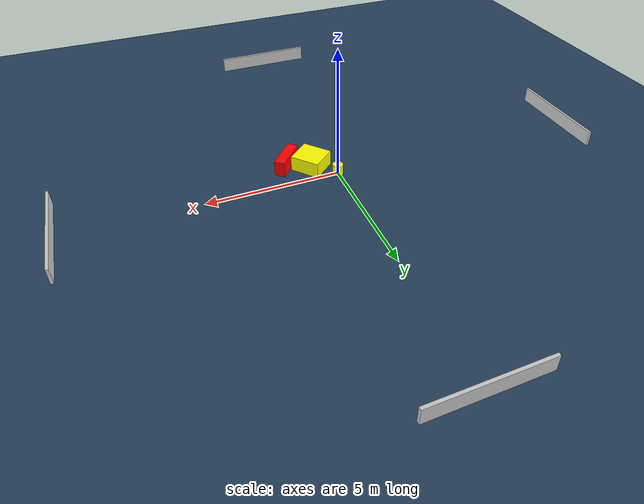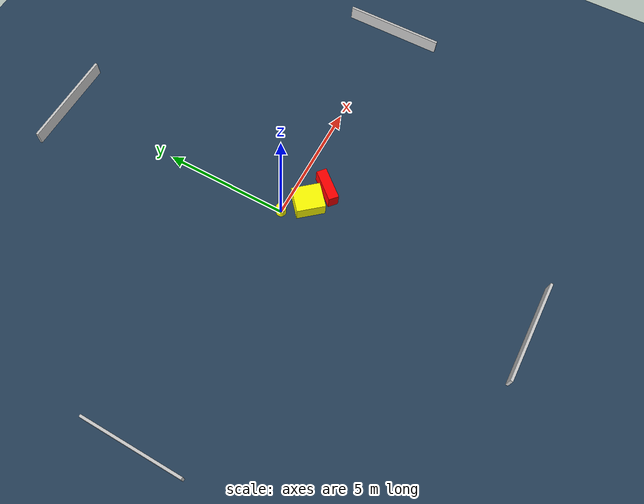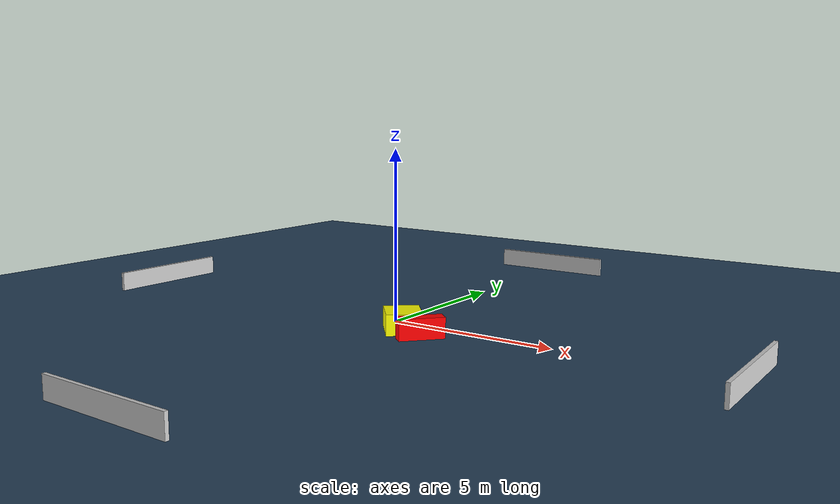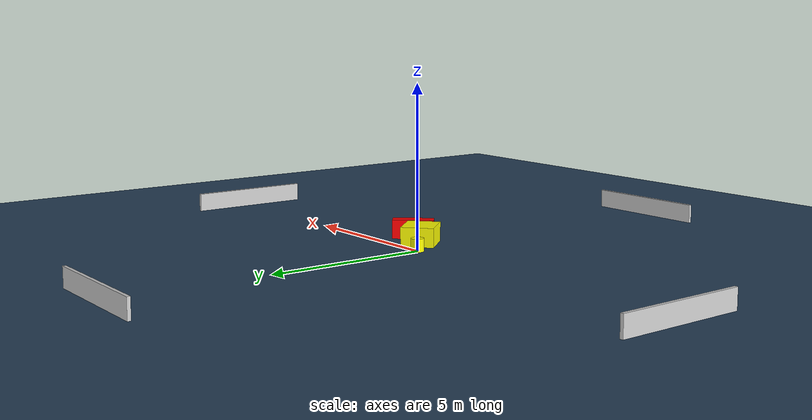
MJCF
<?xml version="1.0" ?>
<mujoco model="generated_environment">
  <option timestep="0.01" integrator="RK4" cone="elliptic"/>
  <default>
    <geom density="1"/>
  </default>
  <asset>
    <texture builtin="gradient" height="3072" name="skybox" rgb1="0.3 0.5 0.7" rgb2="0 0 0" type="skybox" width="512"/>
    <texture builtin="checker" height="300" name="groundplane" rgb1="0.2 0.3 0.4" rgb2="0.1 0.2 0.3" type="2d" width="300"/>
    <material name="groundplane" reflectance="0.2" texrepeat="5 5" texture="groundplane"/>
  </asset>
  <worldbody>
    <light dir="0 0 -1" directional="true" pos="0 0 1.5"/>
    <geom condim="3" friction="0.5 0.005 0.001" material="groundplane" name="floor" pos="0 0 0" size="0 0 0.05" type="plane"/>
    <body name="walls">
      <geom name="wall_1" condim="4" pos="-10.0 0.0 0.3" rgba="0.800000011920929 0.800000011920929 0.800000011920929 1.0" size="0.05 2.0 0.3" type="box"/>
      <geom name="wall_2" condim="4" pos="10.0 0.0 0.3" rgba="0.800000011920929 0.800000011920929 0.800000011920929 1.0" size="0.05 2.0 0.3" type="box"/>
      <geom name="wall_3" condim="4" pos="0.0 -10.0 0.3" rgba="0.800000011920929 0.800000011920929 0.800000011920929 1.0" size="2.0 0.05 0.3" type="box"/>
      <geom name="wall_4" condim="4" pos="0.0 10.0 0.3" rgba="0.800000011920929 0.800000011920929 0.800000011920929 1.0" size="2.0 0.05 0.3" type="box"/>
    </body>
    <body name="robot">
      <joint name="joint_x" type="slide" pos="0 0 0" axis="1 0 0"/>
      <joint name="joint_y" type="slide" pos="0 0 0" axis="0 1 0"/>
      <geom name="robot" type="cylinder" pos="0.0 0.0 0.2" size="0.2 0.2 0.0" mass="5.0" friction="1.0 0.005 0.0001" condim="4" rgba="1.0 1.0 0.0 1.0"/>
    </body>
    <body name="obstacle_1_movable">
      <geom name="obstacle_1_movable" condim="4" pos="0.7986907833767127 -0.7425765617685384 0.3" euler="0 0 310.79602834626405" friction="0.0 0.005 0.001" rgba="1.0 1.0 0.0 1.0" size="0.5641548337076976 0.5106403758497559 0.3" type="box" mass="0.1"/>
      <joint type="free"/>
    </body>
    <body name="obstacle_2_static">
      <geom name="obstacle_2_static" condim="4" pos="1.6513264998889041 -1.1135424186778071 0.3" euler="0 0 139.19190001632956" friction="0.0 0.005 0.001" rgba="1.0 0.0 0.0 1.0" size="0.20404076650589145 0.6503120189789506 0.3" type="box"/>
    </body>
  </worldbody>
  <actuator>
    <motor name="actuator_x" joint="joint_x" gear="1" ctrlrange="-1 1"/>
    <motor name="actuator_y" joint="joint_y" gear="1" ctrlrange="-1 1"/>
  </actuator>
</mujoco>
